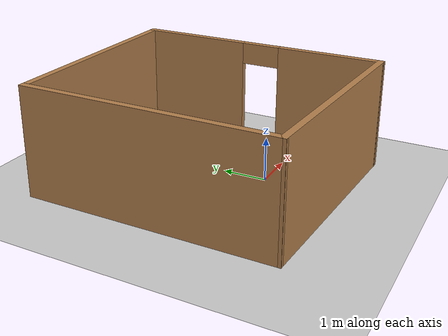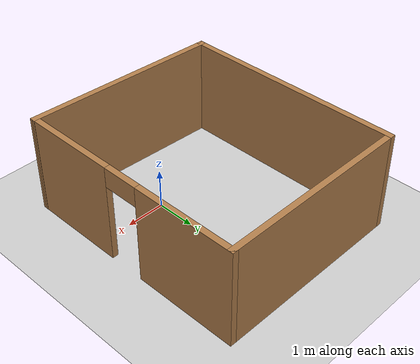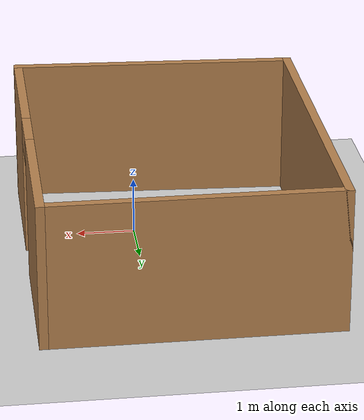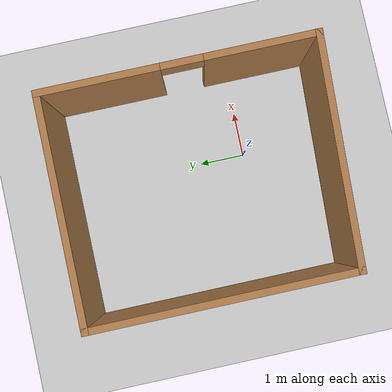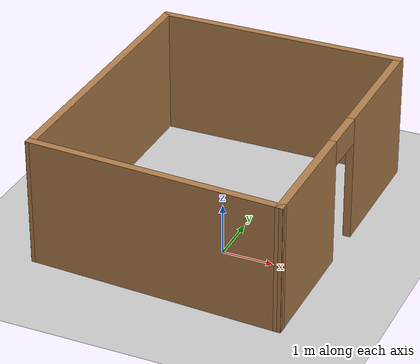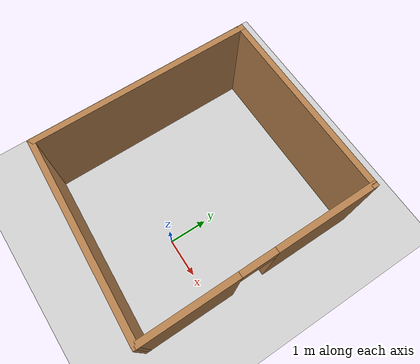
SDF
<sdf version="1.7">
 <world name="default">
  <light name="sun" type="directional">
   <pose>0 0 10 0 -0 0</pose>
   <diffuse>0.8 0.8 0.8 1</diffuse>
   <specular>0.2 0.2 0.2 1</specular>
   <attenuation>
    <range>1000</range>
    <constant>0.9</constant>
    <linear>0.01</linear>
    <quadratic>0.001</quadratic>
   </attenuation>
   <direction>-0.5 0.1 -0.9</direction>
   <spot><inner_angle>0</inner_angle><outer_angle>0</outer_angle><falloff>0</falloff></spot>
  </light>
  <model name="ground_plane">
   <static>1</static>
   <link name="link">
    <collision name="collision">
     <geometry><plane><normal>0 0 1</normal><size>100 100</size></plane></geometry>
     <surface><friction><ode><mu>100</mu><mu2>50</mu2></ode></friction></surface>
    </collision>
    <visual name="visual">
     <cast_shadows>0</cast_shadows>
     <geometry><plane><normal>0 0 1</normal><size>100 100</size></plane></geometry>
     <material>
      <script><uri>file://media/materials/scripts/gazebo.material</uri><name>Gazebo/Grey</name></script>
     </material>
    </visual>
   </link>
  </model>
  <gravity>0 0 -9.8</gravity>
  <magnetic_field>6e-06 2.3e-05 -4.2e-05</magnetic_field>
  <atmosphere type="adiabatic"/>
  <physics type="ode">
   <max_step_size>0.001</max_step_size>
   <real_time_factor>1</real_time_factor>
   <real_time_update_rate>1000</real_time_update_rate>
  </physics>
  <scene><ambient>0.4 0.4 0.4 1</ambient><background>0.7 0.7 0.7 1</background><shadows>1</shadows></scene>
  <audio><device>default</device></audio>
  <spherical_coordinates>
   <surface_model>EARTH_WGS84</surface_model>
   <latitude_deg>0</latitude_deg>
   <longitude_deg>0</longitude_deg>
   <elevation>0</elevation>
   <heading_deg>0</heading_deg>
  </spherical_coordinates>
  <model name="Test_world_0">
   <pose>-0.555584 1.06689 0 0 -0 0</pose>
   <link name="Wall_2">
    <collision name="Wall_2_Collision">
     <geometry><box><size>5.75 0.15 2.5</size></box></geometry>
     <pose>0 0 1.25 0 -0 0</pose>
    </collision>
    <visual name="Wall_2_Visual">
     <pose>0 0 1.25 0 -0 0</pose>
     <geometry><box><size>5.75 0.15 2.5</size></box></geometry>
     <material>
      <script><uri>file://media/materials/scripts/gazebo.material</uri><name>Gazebo/Wood</name></script>
      <ambient>1 1 1 1</ambient>
     </material>
     <meta><layer>0</layer></meta>
    </visual>
    <pose>-2.425 0.12688 0 0 -0 1.5708</pose>
   </link>
   <link name="Wall_3">
    <collision name="Wall_3_Collision">
     <geometry><box><size>5 0.15 2.5</size></box></geometry>
     <pose>0 0 1.25 0 -0 0</pose>
    </collision>
    <visual name="Wall_3_Visual">
     <pose>0 0 1.25 0 -0 0</pose>
     <geometry><box><size>5 0.15 2.5</size></box></geometry>
     <material>
      <script><uri>file://media/materials/scripts/gazebo.material</uri><name>Gazebo/Wood</name></script>
      <ambient>1 1 1 1</ambient>
     </material>
     <meta><layer>0</layer></meta>
    </visual>
    <pose>0 2.92688 0 0 -0 0</pose>
   </link>
   <link name="Wall_4">
    <pose>2.425 0.00188 0 0 -0 -1.5708</pose>
    <visual name="Wall_4_Visual_0">
     <pose>-1.68802 0 1.25 0 -0 0</pose>
     <geometry><box><size>2.62397 0.15 2.5</size></box></geometry>
     <material>
      <script><uri>file://media/materials/scripts/gazebo.material</uri><name>Gazebo/Wood</name></script>
      <ambient>1 1 1 1</ambient>
     </material>
     <meta><layer>0</layer></meta>
    </visual>
    <collision name="Wall_4_Collision_0">
     <geometry><box><size>2.62397 0.15 2.5</size></box></geometry>
     <pose>-1.68802 0 1.25 0 -0 0</pose>
    </collision>
    <visual name="Wall_4_Visual_1">
     <pose>1.76198 0 1.25 0 -0 0</pose>
     <geometry><box><size>2.47603 0.15 2.5</size></box></geometry>
     <material>
      <script><uri>file://media/materials/scripts/gazebo.material</uri><name>Gazebo/Wood</name></script>
      <ambient>1 1 1 1</ambient>
     </material>
     <meta><layer>0</layer></meta>
    </visual>
    <collision name="Wall_4_Collision_1">
     <geometry><box><size>2.47603 0.15 2.5</size></box></geometry>
     <pose>1.76198 0 1.25 0 -0 0</pose>
    </collision>
    <visual name="Wall_4_Visual_2">
     <pose>0.073966 0 2.25 0 -0 0</pose>
     <geometry><box><size>0.9 0.15 0.5</size></box></geometry>
     <material>
      <script><uri>file://media/materials/scripts/gazebo.material</uri><name>Gazebo/Wood</name></script>
      <ambient>1 1 1 1</ambient>
     </material>
     <meta><layer>0</layer></meta>
    </visual>
    <collision name="Wall_4_Collision_2">
     <geometry><box><size>0.9 0.15 0.5</size></box></geometry>
     <pose>0.073966 0 2.25 0 -0 0</pose>
    </collision>
   </link>
   <link name="Wall_5">
    <collision name="Wall_5_Collision">
     <geometry><box><size>5.00644 0.15 2.5</size></box></geometry>
     <pose>0 0 1.25 0 -0 0</pose>
    </collision>
    <visual name="Wall_5_Visual">
     <pose>0 0 1.25 0 -0 0</pose>
     <geometry><box><size>5.00644 0.15 2.5</size></box></geometry>
     <material>
      <script><uri>file://media/materials/scripts/gazebo.material</uri><name>Gazebo/Wood</name></script>
      <ambient>1 1 1 1</ambient>
     </material>
     <meta><layer>0</layer></meta>
    </visual>
    <pose>0 -2.79812 0 0 -0 3.09009</pose>
   </link>
   <static>1</static>
  </model>
 </world>
</sdf>
